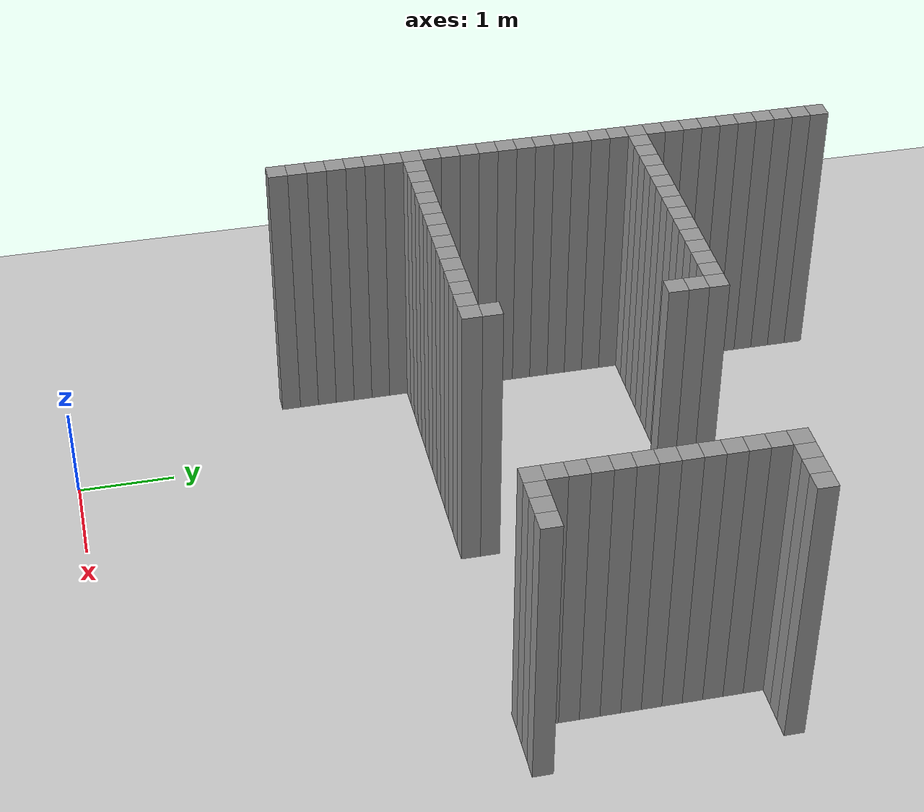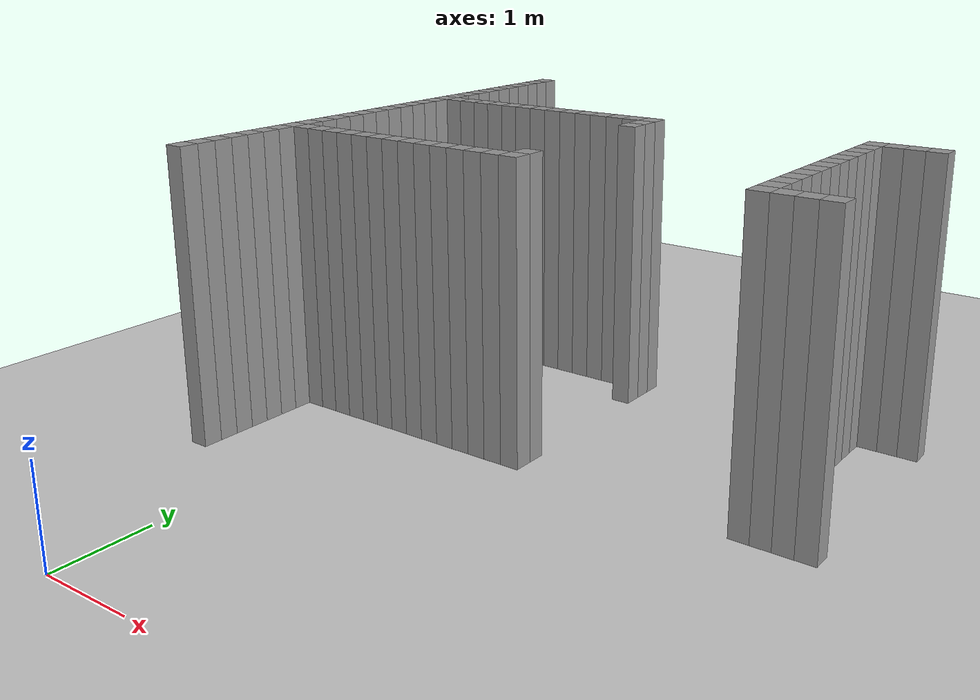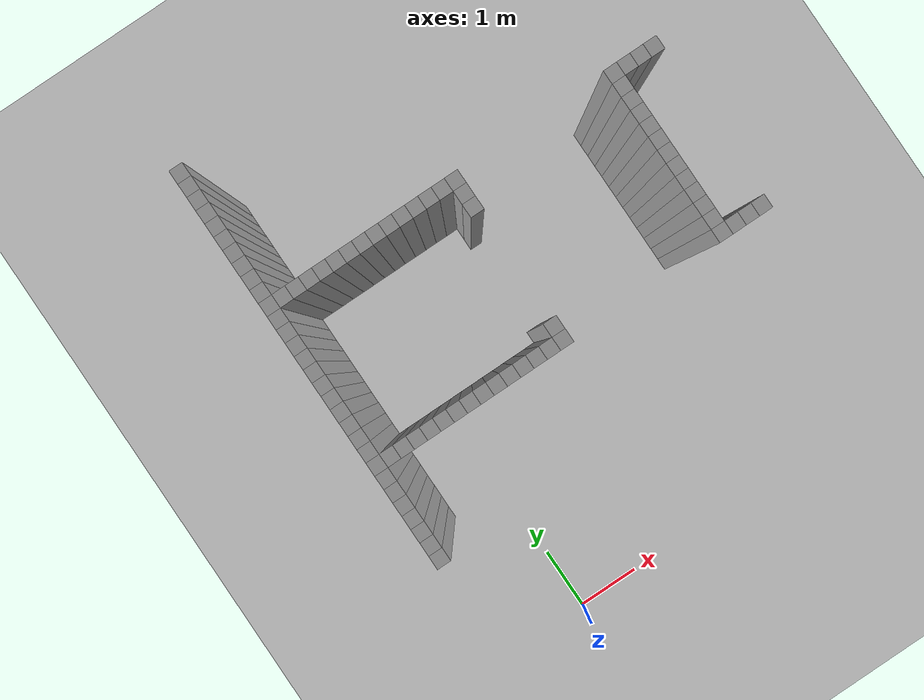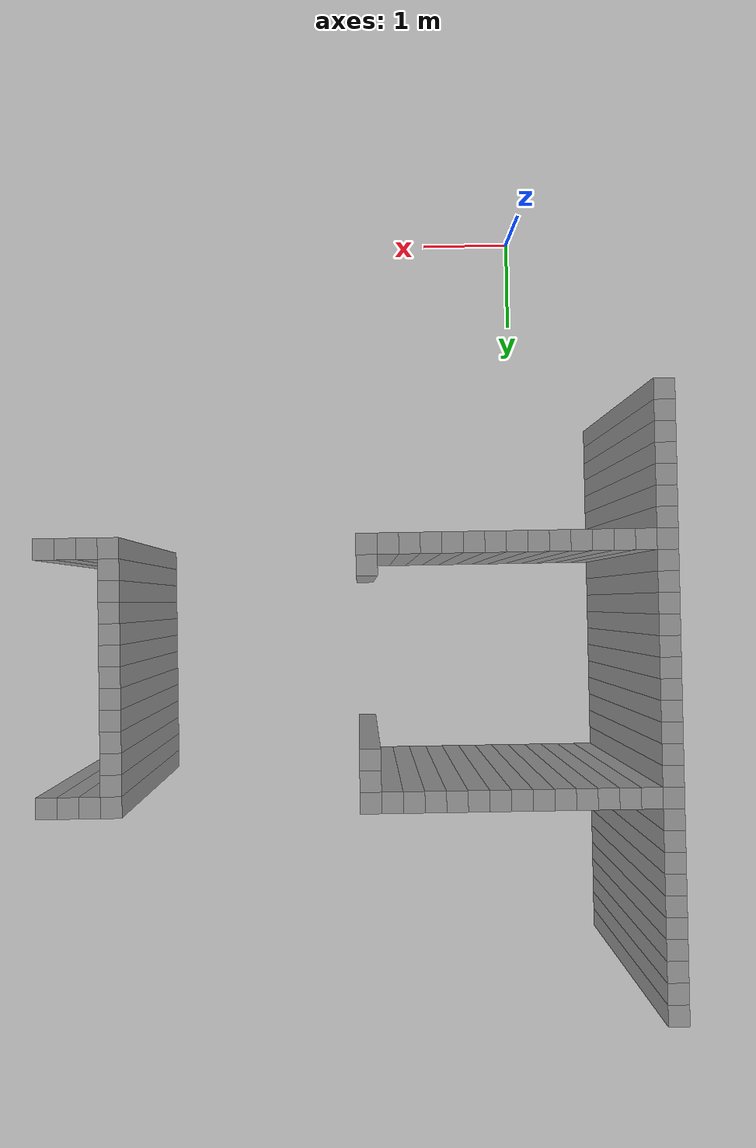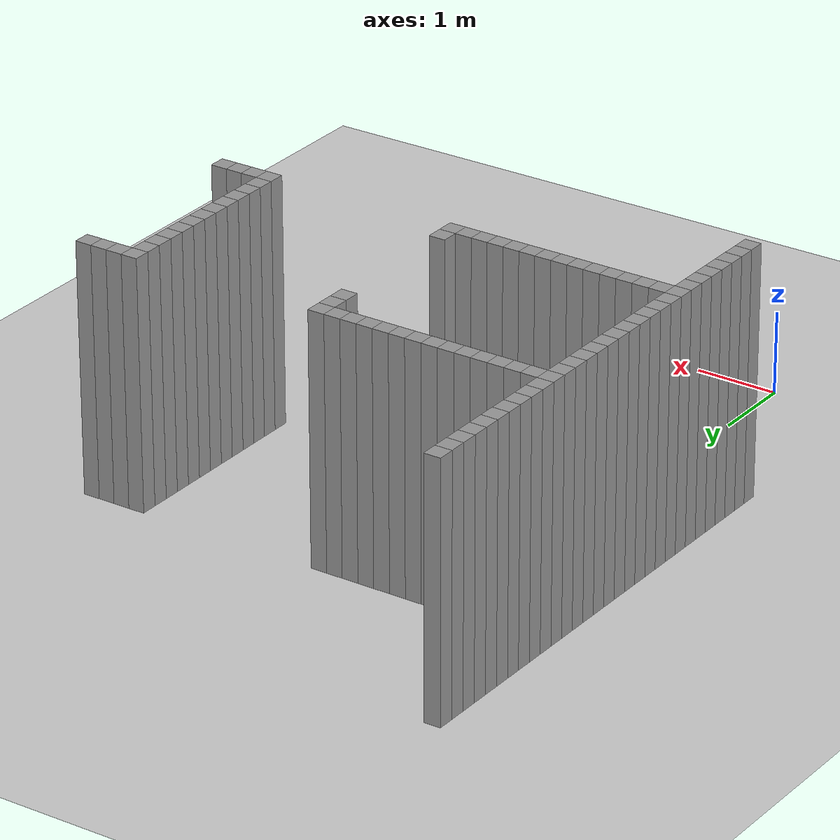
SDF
<sdf version="1.7">
 <world name="default">
  <model name="ground_plane">
   <static>1</static>
   <link name="link">
    <collision name="collision">
     <geometry><plane><normal>0 0 1</normal><size>100 100</size></plane></geometry>
     <surface>
      <contact><collide_bitmask>65535</collide_bitmask></contact>
      <friction><ode><mu>100</mu><mu2>50</mu2></ode></friction>
     </surface>
    </collision>
    <visual name="visual">
     <cast_shadows>0</cast_shadows>
     <geometry><plane><normal>0 0 1</normal><size>100 100</size></plane></geometry>
     <material>
      <script><uri>file://media/materials/scripts/gazebo.material</uri><name>Gazebo/Grey</name></script>
     </material>
    </visual>
   </link>
  </model>
  <model name="image49974">
   <pose>-1 -1 0 0 -0 0</pose>
   <link name="Wall_17">
    <collision name="Wall_17_Collision">
     <geometry><box><size>0.2 0.2 3</size></box></geometry>
     <pose>0 0 1.5 0 -0 0</pose>
    </collision>
    <visual name="Wall_17_Visual">
     <pose>0 0 1.5 0 -0 0</pose>
     <geometry><box><size>0.2 0.2 3</size></box></geometry>
     <material>
      <script><uri>file://media/materials/scripts/gazebo.material</uri><name>Gazebo/Grey</name></script>
      <ambient>1 1 1 1</ambient>
     </material>
     <meta><layer>0</layer></meta>
    </visual>
    <pose>0.0 3.4000000000000004 0 0 -0 0</pose>
   </link>
   <link name="Wall_18">
    <collision name="Wall_18_Collision">
     <geometry><box><size>0.2 0.2 3</size></box></geometry>
     <pose>0 0 1.5 0 -0 0</pose>
    </collision>
    <visual name="Wall_18_Visual">
     <pose>0 0 1.5 0 -0 0</pose>
     <geometry><box><size>0.2 0.2 3</size></box></geometry>
     <material>
      <script><uri>file://media/materials/scripts/gazebo.material</uri><name>Gazebo/Grey</name></script>
      <ambient>1 1 1 1</ambient>
     </material>
     <meta><layer>0</layer></meta>
    </visual>
    <pose>0.0 3.6 0 0 -0 0</pose>
   </link>
   <link name="Wall_19">
    <collision name="Wall_19_Collision">
     <geometry><box><size>0.2 0.2 3</size></box></geometry>
     <pose>0 0 1.5 0 -0 0</pose>
    </collision>
    <visual name="Wall_19_Visual">
     <pose>0 0 1.5 0 -0 0</pose>
     <geometry><box><size>0.2 0.2 3</size></box></geometry>
     <material>
      <script><uri>file://media/materials/scripts/gazebo.material</uri><name>Gazebo/Grey</name></script>
      <ambient>1 1 1 1</ambient>
     </material>
     <meta><layer>0</layer></meta>
    </visual>
    <pose>0.0 3.8000000000000003 0 0 -0 0</pose>
   </link>
   <link name="Wall_20">
    <collision name="Wall_20_Collision">
     <geometry><box><size>0.2 0.2 3</size></box></geometry>
     <pose>0 0 1.5 0 -0 0</pose>
    </collision>
    <visual name="Wall_20_Visual">
     <pose>0 0 1.5 0 -0 0</pose>
     <geometry><box><size>0.2 0.2 3</size></box></geometry>
     <material>
      <script><uri>file://media/materials/scripts/gazebo.material</uri><name>Gazebo/Grey</name></script>
      <ambient>1 1 1 1</ambient>
     </material>
     <meta><layer>0</layer></meta>
    </visual>
    <pose>0.0 4.0 0 0 -0 0</pose>
   </link>
   <link name="Wall_21">
    <collision name="Wall_21_Collision">
     <geometry><box><size>0.2 0.2 3</size></box></geometry>
     <pose>0 0 1.5 0 -0 0</pose>
    </collision>
    <visual name="Wall_21_Visual">
     <pose>0 0 1.5 0 -0 0</pose>
     <geometry><box><size>0.2 0.2 3</size></box></geometry>
     <material>
      <script><uri>file://media/materials/scripts/gazebo.material</uri><name>Gazebo/Grey</name></script>
      <ambient>1 1 1 1</ambient>
     </material>
     <meta><layer>0</layer></meta>
    </visual>
    <pose>0.0 4.2 0 0 -0 0</pose>
   </link>
   <link name="Wall_22">
    <collision name="Wall_22_Collision">
     <geometry><box><size>0.2 0.2 3</size></box></geometry>
     <pose>0 0 1.5 0 -0 0</pose>
    </collision>
    <visual name="Wall_22_Visual">
     <pose>0 0 1.5 0 -0 0</pose>
     <geometry><box><size>0.2 0.2 3</size></box></geometry>
     <material>
      <script><uri>file://media/materials/scripts/gazebo.material</uri><name>Gazebo/Grey</name></script>
      <ambient>1 1 1 1</ambient>
     </material>
     <meta><layer>0</layer></meta>
    </visual>
    <pose>0.0 4.4 0 0 -0 0</pose>
   </link>
   <link name="Wall_23">
    <collision name="Wall_23_Collision">
     <geometry><box><size>0.2 0.2 3</size></box></geometry>
     <pose>0 0 1.5 0 -0 0</pose>
    </collision>
    <visual name="Wall_23_Visual">
     <pose>0 0 1.5 0 -0 0</pose>
     <geometry><box><size>0.2 0.2 3</size></box></geometry>
     <material>
      <script><uri>file://media/materials/scripts/gazebo.material</uri><name>Gazebo/Grey</name></script>
      <ambient>1 1 1 1</ambient>
     </material>
     <meta><layer>0</layer></meta>
    </visual>
    <pose>0.0 4.6000000000000005 0 0 -0 0</pose>
   </link>
   <link name="Wall_24">
    <collision name="Wall_24_Collision">
     <geometry><box><size>0.2 0.2 3</size></box></geometry>
     <pose>0 0 1.5 0 -0 0</pose>
    </collision>
    <visual name="Wall_24_Visual">
     <pose>0 0 1.5 0 -0 0</pose>
     <geometry><box><size>0.2 0.2 3</size></box></geometry>
     <material>
      <script><uri>file://media/materials/scripts/gazebo.material</uri><name>Gazebo/Grey</name></script>
      <ambient>1 1 1 1</ambient>
     </material>
     <meta><layer>0</layer></meta>
    </visual>
    <pose>0.0 4.800000000000001 0 0 -0 0</pose>
   </link>
   <link name="Wall_25">
    <collision name="Wall_25_Collision">
     <geometry><box><size>0.2 0.2 3</size></box></geometry>
     <pose>0 0 1.5 0 -0 0</pose>
    </collision>
    <visual name="Wall_25_Visual">
     <pose>0 0 1.5 0 -0 0</pose>
     <geometry><box><size>0.2 0.2 3</size></box></geometry>
     <material>
      <script><uri>file://media/materials/scripts/gazebo.material</uri><name>Gazebo/Grey</name></script>
      <ambient>1 1 1 1</ambient>
     </material>
     <meta><layer>0</layer></meta>
    </visual>
    <pose>0.0 5.0 0 0 -0 0</pose>
   </link>
   <link name="Wall_26">
    <collision name="Wall_26_Collision">
     <geometry><box><size>0.2 0.2 3</size></box></geometry>
     <pose>0 0 1.5 0 -0 0</pose>
    </collision>
    <visual name="Wall_26_Visual">
     <pose>0 0 1.5 0 -0 0</pose>
     <geometry><box><size>0.2 0.2 3</size></box></geometry>
     <material>
      <script><uri>file://media/materials/scripts/gazebo.material</uri><name>Gazebo/Grey</name></script>
      <ambient>1 1 1 1</ambient>
     </material>
     <meta><layer>0</layer></meta>
    </visual>
    <pose>0.0 5.2 0 0 -0 0</pose>
   </link>
   <link name="Wall_27">
    <collision name="Wall_27_Collision">
     <geometry><box><size>0.2 0.2 3</size></box></geometry>
     <pose>0 0 1.5 0 -0 0</pose>
    </collision>
    <visual name="Wall_27_Visual">
     <pose>0 0 1.5 0 -0 0</pose>
     <geometry><box><size>0.2 0.2 3</size></box></geometry>
     <material>
      <script><uri>file://media/materials/scripts/gazebo.material</uri><name>Gazebo/Grey</name></script>
      <ambient>1 1 1 1</ambient>
     </material>
     <meta><layer>0</layer></meta>
    </visual>
    <pose>0.0 5.4 0 0 -0 0</pose>
   </link>
   <link name="Wall_28">
    <collision name="Wall_28_Collision">
     <geometry><box><size>0.2 0.2 3</size></box></geometry>
     <pose>0 0 1.5 0 -0 0</pose>
    </collision>
    <visual name="Wall_28_Visual">
     <pose>0 0 1.5 0 -0 0</pose>
     <geometry><box><size>0.2 0.2 3</size></box></geometry>
     <material>
      <script><uri>file://media/materials/scripts/gazebo.material</uri><name>Gazebo/Grey</name></script>
      <ambient>1 1 1 1</ambient>
     </material>
     <meta><layer>0</layer></meta>
    </visual>
    <pose>0.0 5.6000000000000005 0 0 -0 0</pose>
   </link>
   <link name="Wall_29">
    <collision name="Wall_29_Collision">
     <geometry><box><size>0.2 0.2 3</size></box></geometry>
     <pose>0 0 1.5 0 -0 0</pose>
    </collision>
    <visual name="Wall_29_Visual">
     <pose>0 0 1.5 0 -0 0</pose>
     <geometry><box><size>0.2 0.2 3</size></box></geometry>
     <material>
      <script><uri>file://media/materials/scripts/gazebo.material</uri><name>Gazebo/Grey</name></script>
      <ambient>1 1 1 1</ambient>
     </material>
     <meta><layer>0</layer></meta>
    </visual>
    <pose>0.0 5.800000000000001 0 0 -0 0</pose>
   </link>
   <link name="Wall_30">
    <collision name="Wall_30_Collision">
     <geometry><box><size>0.2 0.2 3</size></box></geometry>
     <pose>0 0 1.5 0 -0 0</pose>
    </collision>
    <visual name="Wall_30_Visual">
     <pose>0 0 1.5 0 -0 0</pose>
     <geometry><box><size>0.2 0.2 3</size></box></geometry>
     <material>
      <script><uri>file://media/materials/scripts/gazebo.material</uri><name>Gazebo/Grey</name></script>
      <ambient>1 1 1 1</ambient>
     </material>
     <meta><layer>0</layer></meta>
    </visual>
    <pose>0.0 6.0 0 0 -0 0</pose>
   </link>
   <link name="Wall_31">
    <collision name="Wall_31_Collision">
     <geometry><box><size>0.2 0.2 3</size></box></geometry>
     <pose>0 0 1.5 0 -0 0</pose>
    </collision>
    <visual name="Wall_31_Visual">
     <pose>0 0 1.5 0 -0 0</pose>
     <geometry><box><size>0.2 0.2 3</size></box></geometry>
     <material>
      <script><uri>file://media/materials/scripts/gazebo.material</uri><name>Gazebo/Grey</name></script>
      <ambient>1 1 1 1</ambient>
     </material>
     <meta><layer>0</layer></meta>
    </visual>
    <pose>0.0 6.2 0 0 -0 0</pose>
   </link>
   <link name="Wall_32">
    <collision name="Wall_32_Collision">
     <geometry><box><size>0.2 0.2 3</size></box></geometry>
     <pose>0 0 1.5 0 -0 0</pose>
    </collision>
    <visual name="Wall_32_Visual">
     <pose>0 0 1.5 0 -0 0</pose>
     <geometry><box><size>0.2 0.2 3</size></box></geometry>
     <material>
      <script><uri>file://media/materials/scripts/gazebo.material</uri><name>Gazebo/Grey</name></script>
      <ambient>1 1 1 1</ambient>
     </material>
     <meta><layer>0</layer></meta>
    </visual>
    <pose>0.0 6.4 0 0 -0 0</pose>
   </link>
   <link name="Wall_33">
    <collision name="Wall_33_Collision">
     <geometry><box><size>0.2 0.2 3</size></box></geometry>
     <pose>0 0 1.5 0 -0 0</pose>
    </collision>
    <visual name="Wall_33_Visual">
     <pose>0 0 1.5 0 -0 0</pose>
     <geometry><box><size>0.2 0.2 3</size></box></geometry>
     <material>
      <script><uri>file://media/materials/scripts/gazebo.material</uri><name>Gazebo/Grey</name></script>
      <ambient>1 1 1 1</ambient>
     </material>
     <meta><layer>0</layer></meta>
    </visual>
    <pose>0.0 6.6000000000000005 0 0 -0 0</pose>
   </link>
   <link name="Wall_34">
    <collision name="Wall_34_Collision">
     <geometry><box><size>0.2 0.2 3</size></box></geometry>
     <pose>0 0 1.5 0 -0 0</pose>
    </collision>
    <visual name="Wall_34_Visual">
     <pose>0 0 1.5 0 -0 0</pose>
     <geometry><box><size>0.2 0.2 3</size></box></geometry>
     <material>
      <script><uri>file://media/materials/scripts/gazebo.material</uri><name>Gazebo/Grey</name></script>
      <ambient>1 1 1 1</ambient>
     </material>
     <meta><layer>0</layer></meta>
    </visual>
    <pose>0.0 6.800000000000001 0 0 -0 0</pose>
   </link>
   <link name="Wall_35">
    <collision name="Wall_35_Collision">
     <geometry><box><size>0.2 0.2 3</size></box></geometry>
     <pose>0 0 1.5 0 -0 0</pose>
    </collision>
    <visual name="Wall_35_Visual">
     <pose>0 0 1.5 0 -0 0</pose>
     <geometry><box><size>0.2 0.2 3</size></box></geometry>
     <material>
      <script><uri>file://media/materials/scripts/gazebo.material</uri><name>Gazebo/Grey</name></script>
      <ambient>1 1 1 1</ambient>
     </material>
     <meta><layer>0</layer></meta>
    </visual>
    <pose>0.0 7.0 0 0 -0 0</pose>
   </link>
   <link name="Wall_36">
    <collision name="Wall_36_Collision">
     <geometry><box><size>0.2 0.2 3</size></box></geometry>
     <pose>0 0 1.5 0 -0 0</pose>
    </collision>
    <visual name="Wall_36_Visual">
     <pose>0 0 1.5 0 -0 0</pose>
     <geometry><box><size>0.2 0.2 3</size></box></geometry>
     <material>
      <script><uri>file://media/materials/scripts/gazebo.material</uri><name>Gazebo/Grey</name></script>
      <ambient>1 1 1 1</ambient>
     </material>
     <meta><layer>0</layer></meta>
    </visual>
    <pose>0.0 7.2 0 0 -0 0</pose>
   </link>
   <link name="Wall_37">
    <collision name="Wall_37_Collision">
     <geometry><box><size>0.2 0.2 3</size></box></geometry>
     <pose>0 0 1.5 0 -0 0</pose>
    </collision>
    <visual name="Wall_37_Visual">
     <pose>0 0 1.5 0 -0 0</pose>
     <geometry><box><size>0.2 0.2 3</size></box></geometry>
     <material>
      <script><uri>file://media/materials/scripts/gazebo.material</uri><name>Gazebo/Grey</name></script>
      <ambient>1 1 1 1</ambient>
     </material>
     <meta><layer>0</layer></meta>
    </visual>
    <pose>0.0 7.4 0 0 -0 0</pose>
   </link>
   <link name="Wall_38">
    <collision name="Wall_38_Collision">
     <geometry><box><size>0.2 0.2 3</size></box></geometry>
     <pose>0 0 1.5 0 -0 0</pose>
    </collision>
    <visual name="Wall_38_Visual">
     <pose>0 0 1.5 0 -0 0</pose>
     <geometry><box><size>0.2 0.2 3</size></box></geometry>
     <material>
      <script><uri>file://media/materials/scripts/gazebo.material</uri><name>Gazebo/Grey</name></script>
      <ambient>1 1 1 1</ambient>
     </material>
     <meta><layer>0</layer></meta>
    </visual>
    <pose>0.0 7.6000000000000005 0 0 -0 0</pose>
   </link>
   <link name="Wall_39">
    <collision name="Wall_39_Collision">
     <geometry><box><size>0.2 0.2 3</size></box></geometry>
     <pose>0 0 1.5 0 -0 0</pose>
    </collision>
    <visual name="Wall_39_Visual">
     <pose>0 0 1.5 0 -0 0</pose>
     <geometry><box><size>0.2 0.2 3</size></box></geometry>
     <material>
      <script><uri>file://media/materials/scripts/gazebo.material</uri><name>Gazebo/Grey</name></script>
      <ambient>1 1 1 1</ambient>
     </material>
     <meta><layer>0</layer></meta>
    </visual>
    <pose>0.0 7.800000000000001 0 0 -0 0</pose>
   </link>
   <link name="Wall_40">
    <collision name="Wall_40_Collision">
     <geometry><box><size>0.2 0.2 3</size></box></geometry>
     <pose>0 0 1.5 0 -0 0</pose>
    </collision>
    <visual name="Wall_40_Visual">
     <pose>0 0 1.5 0 -0 0</pose>
     <geometry><box><size>0.2 0.2 3</size></box></geometry>
     <material>
      <script><uri>file://media/materials/scripts/gazebo.material</uri><name>Gazebo/Grey</name></script>
      <ambient>1 1 1 1</ambient>
     </material>
     <meta><layer>0</layer></meta>
    </visual>
    <pose>0.0 8.0 0 0 -0 0</pose>
   </link>
   <link name="Wall_41">
    <collision name="Wall_41_Collision">
     <geometry><box><size>0.2 0.2 3</size></box></geometry>
     <pose>0 0 1.5 0 -0 0</pose>
    </collision>
    <visual name="Wall_41_Visual">
     <pose>0 0 1.5 0 -0 0</pose>
     <geometry><box><size>0.2 0.2 3</size></box></geometry>
     <material>
      <script><uri>file://media/materials/scripts/gazebo.material</uri><name>Gazebo/Grey</name></script>
      <ambient>1 1 1 1</ambient>
     </material>
     <meta><layer>0</layer></meta>
    </visual>
    <pose>0.0 8.200000000000001 0 0 -0 0</pose>
   </link>
   <link name="Wall_42">
    <collision name="Wall_42_Collision">
     <geometry><box><size>0.2 0.2 3</size></box></geometry>
     <pose>0 0 1.5 0 -0 0</pose>
    </collision>
    <visual name="Wall_42_Visual">
     <pose>0 0 1.5 0 -0 0</pose>
     <geometry><box><size>0.2 0.2 3</size></box></geometry>
     <material>
      <script><uri>file://media/materials/scripts/gazebo.material</uri><name>Gazebo/Grey</name></script>
      <ambient>1 1 1 1</ambient>
     </material>
     <meta><layer>0</layer></meta>
    </visual>
    <pose>0.0 8.4 0 0 -0 0</pose>
   </link>
   <link name="Wall_43">
    <collision name="Wall_43_Collision">
     <geometry><box><size>0.2 0.2 3</size></box></geometry>
     <pose>0 0 1.5 0 -0 0</pose>
    </collision>
    <visual name="Wall_43_Visual">
     <pose>0 0 1.5 0 -0 0</pose>
     <geometry><box><size>0.2 0.2 3</size></box></geometry>
     <material>
      <script><uri>file://media/materials/scripts/gazebo.material</uri><name>Gazebo/Grey</name></script>
      <ambient>1 1 1 1</ambient>
     </material>
     <meta><layer>0</layer></meta>
    </visual>
    <pose>0.0 8.6 0 0 -0 0</pose>
   </link>
   <link name="Wall_44">
    <collision name="Wall_44_Collision">
     <geometry><box><size>0.2 0.2 3</size></box></geometry>
     <pose>0 0 1.5 0 -0 0</pose>
    </collision>
    <visual name="Wall_44_Visual">
     <pose>0 0 1.5 0 -0 0</pose>
     <geometry><box><size>0.2 0.2 3</size></box></geometry>
     <material>
      <script><uri>file://media/materials/scripts/gazebo.material</uri><name>Gazebo/Grey</name></script>
      <ambient>1 1 1 1</ambient>
     </material>
     <meta><layer>0</layer></meta>
    </visual>
    <pose>0.0 8.8 0 0 -0 0</pose>
   </link>
   <link name="Wall_45">
    <collision name="Wall_45_Collision">
     <geometry><box><size>0.2 0.2 3</size></box></geometry>
     <pose>0 0 1.5 0 -0 0</pose>
    </collision>
    <visual name="Wall_45_Visual">
     <pose>0 0 1.5 0 -0 0</pose>
     <geometry><box><size>0.2 0.2 3</size></box></geometry>
     <material>
      <script><uri>file://media/materials/scripts/gazebo.material</uri><name>Gazebo/Grey</name></script>
      <ambient>1 1 1 1</ambient>
     </material>
     <meta><layer>0</layer></meta>
    </visual>
    <pose>0.0 9.0 0 0 -0 0</pose>
   </link>
   <link name="Wall_46">
    <collision name="Wall_46_Collision">
     <geometry><box><size>0.2 0.2 3</size></box></geometry>
     <pose>0 0 1.5 0 -0 0</pose>
    </collision>
    <visual name="Wall_46_Visual">
     <pose>0 0 1.5 0 -0 0</pose>
     <geometry><box><size>0.2 0.2 3</size></box></geometry>
     <material>
      <script><uri>file://media/materials/scripts/gazebo.material</uri><name>Gazebo/Grey</name></script>
      <ambient>1 1 1 1</ambient>
     </material>
     <meta><layer>0</layer></meta>
    </visual>
    <pose>0.0 9.200000000000001 0 0 -0 0</pose>
   </link>
   <link name="Wall_62">
    <collision name="Wall_62_Collision">
     <geometry><box><size>0.2 0.2 3</size></box></geometry>
     <pose>0 0 1.5 0 -0 0</pose>
    </collision>
    <visual name="Wall_62_Visual">
     <pose>0 0 1.5 0 -0 0</pose>
     <geometry><box><size>0.2 0.2 3</size></box></geometry>
     <material>
      <script><uri>file://media/materials/scripts/gazebo.material</uri><name>Gazebo/Grey</name></script>
      <ambient>1 1 1 1</ambient>
     </material>
     <meta><layer>0</layer></meta>
    </visual>
    <pose>0.2 4.800000000000001 0 0 -0 0</pose>
   </link>
   <link name="Wall_63">
    <collision name="Wall_63_Collision">
     <geometry><box><size>0.2 0.2 3</size></box></geometry>
     <pose>0 0 1.5 0 -0 0</pose>
    </collision>
    <visual name="Wall_63_Visual">
     <pose>0 0 1.5 0 -0 0</pose>
     <geometry><box><size>0.2 0.2 3</size></box></geometry>
     <material>
      <script><uri>file://media/materials/scripts/gazebo.material</uri><name>Gazebo/Grey</name></script>
      <ambient>1 1 1 1</ambient>
     </material>
     <meta><layer>0</layer></meta>
    </visual>
    <pose>0.2 7.2 0 0 -0 0</pose>
   </link>
   <link name="Wall_68">
    <collision name="Wall_68_Collision">
     <geometry><box><size>0.2 0.2 3</size></box></geometry>
     <pose>0 0 1.5 0 -0 0</pose>
    </collision>
    <visual name="Wall_68_Visual">
     <pose>0 0 1.5 0 -0 0</pose>
     <geometry><box><size>0.2 0.2 3</size></box></geometry>
     <material>
      <script><uri>file://media/materials/scripts/gazebo.material</uri><name>Gazebo/Grey</name></script>
      <ambient>1 1 1 1</ambient>
     </material>
     <meta><layer>0</layer></meta>
    </visual>
    <pose>0.4 4.800000000000001 0 0 -0 0</pose>
   </link>
   <link name="Wall_69">
    <collision name="Wall_69_Collision">
     <geometry><box><size>0.2 0.2 3</size></box></geometry>
     <pose>0 0 1.5 0 -0 0</pose>
    </collision>
    <visual name="Wall_69_Visual">
     <pose>0 0 1.5 0 -0 0</pose>
     <geometry><box><size>0.2 0.2 3</size></box></geometry>
     <material>
      <script><uri>file://media/materials/scripts/gazebo.material</uri><name>Gazebo/Grey</name></script>
      <ambient>1 1 1 1</ambient>
     </material>
     <meta><layer>0</layer></meta>
    </visual>
    <pose>0.4 7.2 0 0 -0 0</pose>
   </link>
   <link name="Wall_74">
    <collision name="Wall_74_Collision">
     <geometry><box><size>0.2 0.2 3</size></box></geometry>
     <pose>0 0 1.5 0 -0 0</pose>
    </collision>
    <visual name="Wall_74_Visual">
     <pose>0 0 1.5 0 -0 0</pose>
     <geometry><box><size>0.2 0.2 3</size></box></geometry>
     <material>
      <script><uri>file://media/materials/scripts/gazebo.material</uri><name>Gazebo/Grey</name></script>
      <ambient>1 1 1 1</ambient>
     </material>
     <meta><layer>0</layer></meta>
    </visual>
    <pose>0.6000000000000001 4.800000000000001 0 0 -0 0</pose>
   </link>
   <link name="Wall_75">
    <collision name="Wall_75_Collision">
     <geometry><box><size>0.2 0.2 3</size></box></geometry>
     <pose>0 0 1.5 0 -0 0</pose>
    </collision>
    <visual name="Wall_75_Visual">
     <pose>0 0 1.5 0 -0 0</pose>
     <geometry><box><size>0.2 0.2 3</size></box></geometry>
     <material>
      <script><uri>file://media/materials/scripts/gazebo.material</uri><name>Gazebo/Grey</name></script>
      <ambient>1 1 1 1</ambient>
     </material>
     <meta><layer>0</layer></meta>
    </visual>
    <pose>0.6000000000000001 7.2 0 0 -0 0</pose>
   </link>
   <link name="Wall_80">
    <collision name="Wall_80_Collision">
     <geometry><box><size>0.2 0.2 3</size></box></geometry>
     <pose>0 0 1.5 0 -0 0</pose>
    </collision>
    <visual name="Wall_80_Visual">
     <pose>0 0 1.5 0 -0 0</pose>
     <geometry><box><size>0.2 0.2 3</size></box></geometry>
     <material>
      <script><uri>file://media/materials/scripts/gazebo.material</uri><name>Gazebo/Grey</name></script>
      <ambient>1 1 1 1</ambient>
     </material>
     <meta><layer>0</layer></meta>
    </visual>
    <pose>0.8 4.800000000000001 0 0 -0 0</pose>
   </link>
   <link name="Wall_81">
    <collision name="Wall_81_Collision">
     <geometry><box><size>0.2 0.2 3</size></box></geometry>
     <pose>0 0 1.5 0 -0 0</pose>
    </collision>
    <visual name="Wall_81_Visual">
     <pose>0 0 1.5 0 -0 0</pose>
     <geometry><box><size>0.2 0.2 3</size></box></geometry>
     <material>
      <script><uri>file://media/materials/scripts/gazebo.material</uri><name>Gazebo/Grey</name></script>
      <ambient>1 1 1 1</ambient>
     </material>
     <meta><layer>0</layer></meta>
    </visual>
    <pose>0.8 7.2 0 0 -0 0</pose>
   </link>
   <link name="Wall_86">
    <collision name="Wall_86_Collision">
     <geometry><box><size>0.2 0.2 3</size></box></geometry>
     <pose>0 0 1.5 0 -0 0</pose>
    </collision>
    <visual name="Wall_86_Visual">
     <pose>0 0 1.5 0 -0 0</pose>
     <geometry><box><size>0.2 0.2 3</size></box></geometry>
     <material>
      <script><uri>file://media/materials/scripts/gazebo.material</uri><name>Gazebo/Grey</name></script>
      <ambient>1 1 1 1</ambient>
     </material>
     <meta><layer>0</layer></meta>
    </visual>
    <pose>1.0 4.800000000000001 0 0 -0 0</pose>
   </link>
   <link name="Wall_87">
    <collision name="Wall_87_Collision">
     <geometry><box><size>0.2 0.2 3</size></box></geometry>
     <pose>0 0 1.5 0 -0 0</pose>
    </collision>
    <visual name="Wall_87_Visual">
     <pose>0 0 1.5 0 -0 0</pose>
     <geometry><box><size>0.2 0.2 3</size></box></geometry>
     <material>
      <script><uri>file://media/materials/scripts/gazebo.material</uri><name>Gazebo/Grey</name></script>
      <ambient>1 1 1 1</ambient>
     </material>
     <meta><layer>0</layer></meta>
    </visual>
    <pose>1.0 7.2 0 0 -0 0</pose>
   </link>
   <link name="Wall_91">
    <collision name="Wall_91_Collision">
     <geometry><box><size>0.2 0.2 3</size></box></geometry>
     <pose>0 0 1.5 0 -0 0</pose>
    </collision>
    <visual name="Wall_91_Visual">
     <pose>0 0 1.5 0 -0 0</pose>
     <geometry><box><size>0.2 0.2 3</size></box></geometry>
     <material>
      <script><uri>file://media/materials/scripts/gazebo.material</uri><name>Gazebo/Grey</name></script>
      <ambient>1 1 1 1</ambient>
     </material>
     <meta><layer>0</layer></meta>
    </visual>
    <pose>1.2000000000000002 4.800000000000001 0 0 -0 0</pose>
   </link>
   <link name="Wall_92">
    <collision name="Wall_92_Collision">
     <geometry><box><size>0.2 0.2 3</size></box></geometry>
     <pose>0 0 1.5 0 -0 0</pose>
    </collision>
    <visual name="Wall_92_Visual">
     <pose>0 0 1.5 0 -0 0</pose>
     <geometry><box><size>0.2 0.2 3</size></box></geometry>
     <material>
      <script><uri>file://media/materials/scripts/gazebo.material</uri><name>Gazebo/Grey</name></script>
      <ambient>1 1 1 1</ambient>
     </material>
     <meta><layer>0</layer></meta>
    </visual>
    <pose>1.2000000000000002 7.2 0 0 -0 0</pose>
   </link>
   <link name="Wall_96">
    <collision name="Wall_96_Collision">
     <geometry><box><size>0.2 0.2 3</size></box></geometry>
     <pose>0 0 1.5 0 -0 0</pose>
    </collision>
    <visual name="Wall_96_Visual">
     <pose>0 0 1.5 0 -0 0</pose>
     <geometry><box><size>0.2 0.2 3</size></box></geometry>
     <material>
      <script><uri>file://media/materials/scripts/gazebo.material</uri><name>Gazebo/Grey</name></script>
      <ambient>1 1 1 1</ambient>
     </material>
     <meta><layer>0</layer></meta>
    </visual>
    <pose>1.4000000000000001 4.800000000000001 0 0 -0 0</pose>
   </link>
   <link name="Wall_97">
    <collision name="Wall_97_Collision">
     <geometry><box><size>0.2 0.2 3</size></box></geometry>
     <pose>0 0 1.5 0 -0 0</pose>
    </collision>
    <visual name="Wall_97_Visual">
     <pose>0 0 1.5 0 -0 0</pose>
     <geometry><box><size>0.2 0.2 3</size></box></geometry>
     <material>
      <script><uri>file://media/materials/scripts/gazebo.material</uri><name>Gazebo/Grey</name></script>
      <ambient>1 1 1 1</ambient>
     </material>
     <meta><layer>0</layer></meta>
    </visual>
    <pose>1.4000000000000001 7.2 0 0 -0 0</pose>
   </link>
   <link name="Wall_100">
    <collision name="Wall_100_Collision">
     <geometry><box><size>0.2 0.2 3</size></box></geometry>
     <pose>0 0 1.5 0 -0 0</pose>
    </collision>
    <visual name="Wall_100_Visual">
     <pose>0 0 1.5 0 -0 0</pose>
     <geometry><box><size>0.2 0.2 3</size></box></geometry>
     <material>
      <script><uri>file://media/materials/scripts/gazebo.material</uri><name>Gazebo/Grey</name></script>
      <ambient>1 1 1 1</ambient>
     </material>
     <meta><layer>0</layer></meta>
    </visual>
    <pose>1.6 4.800000000000001 0 0 -0 0</pose>
   </link>
   <link name="Wall_101">
    <collision name="Wall_101_Collision">
     <geometry><box><size>0.2 0.2 3</size></box></geometry>
     <pose>0 0 1.5 0 -0 0</pose>
    </collision>
    <visual name="Wall_101_Visual">
     <pose>0 0 1.5 0 -0 0</pose>
     <geometry><box><size>0.2 0.2 3</size></box></geometry>
     <material>
      <script><uri>file://media/materials/scripts/gazebo.material</uri><name>Gazebo/Grey</name></script>
      <ambient>1 1 1 1</ambient>
     </material>
     <meta><layer>0</layer></meta>
    </visual>
    <pose>1.6 7.2 0 0 -0 0</pose>
   </link>
   <link name="Wall_104">
    <collision name="Wall_104_Collision">
     <geometry><box><size>0.2 0.2 3</size></box></geometry>
     <pose>0 0 1.5 0 -0 0</pose>
    </collision>
    <visual name="Wall_104_Visual">
     <pose>0 0 1.5 0 -0 0</pose>
     <geometry><box><size>0.2 0.2 3</size></box></geometry>
     <material>
      <script><uri>file://media/materials/scripts/gazebo.material</uri><name>Gazebo/Grey</name></script>
      <ambient>1 1 1 1</ambient>
     </material>
     <meta><layer>0</layer></meta>
    </visual>
    <pose>1.8 4.800000000000001 0 0 -0 0</pose>
   </link>
   <link name="Wall_105">
    <collision name="Wall_105_Collision">
     <geometry><box><size>0.2 0.2 3</size></box></geometry>
     <pose>0 0 1.5 0 -0 0</pose>
    </collision>
    <visual name="Wall_105_Visual">
     <pose>0 0 1.5 0 -0 0</pose>
     <geometry><box><size>0.2 0.2 3</size></box></geometry>
     <material>
      <script><uri>file://media/materials/scripts/gazebo.material</uri><name>Gazebo/Grey</name></script>
      <ambient>1 1 1 1</ambient>
     </material>
     <meta><layer>0</layer></meta>
    </visual>
    <pose>1.8 7.2 0 0 -0 0</pose>
   </link>
   <link name="Wall_108">
    <collision name="Wall_108_Collision">
     <geometry><box><size>0.2 0.2 3</size></box></geometry>
     <pose>0 0 1.5 0 -0 0</pose>
    </collision>
    <visual name="Wall_108_Visual">
     <pose>0 0 1.5 0 -0 0</pose>
     <geometry><box><size>0.2 0.2 3</size></box></geometry>
     <material>
      <script><uri>file://media/materials/scripts/gazebo.material</uri><name>Gazebo/Grey</name></script>
      <ambient>1 1 1 1</ambient>
     </material>
     <meta><layer>0</layer></meta>
    </visual>
    <pose>2.0 4.800000000000001 0 0 -0 0</pose>
   </link>
   <link name="Wall_109">
    <collision name="Wall_109_Collision">
     <geometry><box><size>0.2 0.2 3</size></box></geometry>
     <pose>0 0 1.5 0 -0 0</pose>
    </collision>
    <visual name="Wall_109_Visual">
     <pose>0 0 1.5 0 -0 0</pose>
     <geometry><box><size>0.2 0.2 3</size></box></geometry>
     <material>
      <script><uri>file://media/materials/scripts/gazebo.material</uri><name>Gazebo/Grey</name></script>
      <ambient>1 1 1 1</ambient>
     </material>
     <meta><layer>0</layer></meta>
    </visual>
    <pose>2.0 7.2 0 0 -0 0</pose>
   </link>
   <link name="Wall_112">
    <collision name="Wall_112_Collision">
     <geometry><box><size>0.2 0.2 3</size></box></geometry>
     <pose>0 0 1.5 0 -0 0</pose>
    </collision>
    <visual name="Wall_112_Visual">
     <pose>0 0 1.5 0 -0 0</pose>
     <geometry><box><size>0.2 0.2 3</size></box></geometry>
     <material>
      <script><uri>file://media/materials/scripts/gazebo.material</uri><name>Gazebo/Grey</name></script>
      <ambient>1 1 1 1</ambient>
     </material>
     <meta><layer>0</layer></meta>
    </visual>
    <pose>2.2 4.800000000000001 0 0 -0 0</pose>
   </link>
   <link name="Wall_113">
    <collision name="Wall_113_Collision">
     <geometry><box><size>0.2 0.2 3</size></box></geometry>
     <pose>0 0 1.5 0 -0 0</pose>
    </collision>
    <visual name="Wall_113_Visual">
     <pose>0 0 1.5 0 -0 0</pose>
     <geometry><box><size>0.2 0.2 3</size></box></geometry>
     <material>
      <script><uri>file://media/materials/scripts/gazebo.material</uri><name>Gazebo/Grey</name></script>
      <ambient>1 1 1 1</ambient>
     </material>
     <meta><layer>0</layer></meta>
    </visual>
    <pose>2.2 7.2 0 0 -0 0</pose>
   </link>
   <link name="Wall_116">
    <collision name="Wall_116_Collision">
     <geometry><box><size>0.2 0.2 3</size></box></geometry>
     <pose>0 0 1.5 0 -0 0</pose>
    </collision>
    <visual name="Wall_116_Visual">
     <pose>0 0 1.5 0 -0 0</pose>
     <geometry><box><size>0.2 0.2 3</size></box></geometry>
     <material>
      <script><uri>file://media/materials/scripts/gazebo.material</uri><name>Gazebo/Grey</name></script>
      <ambient>1 1 1 1</ambient>
     </material>
     <meta><layer>0</layer></meta>
    </visual>
    <pose>2.4000000000000004 4.800000000000001 0 0 -0 0</pose>
   </link>
   <link name="Wall_117">
    <collision name="Wall_117_Collision">
     <geometry><box><size>0.2 0.2 3</size></box></geometry>
     <pose>0 0 1.5 0 -0 0</pose>
    </collision>
    <visual name="Wall_117_Visual">
     <pose>0 0 1.5 0 -0 0</pose>
     <geometry><box><size>0.2 0.2 3</size></box></geometry>
     <material>
      <script><uri>file://media/materials/scripts/gazebo.material</uri><name>Gazebo/Grey</name></script>
      <ambient>1 1 1 1</ambient>
     </material>
     <meta><layer>0</layer></meta>
    </visual>
    <pose>2.4000000000000004 7.2 0 0 -0 0</pose>
   </link>
   <link name="Wall_132">
    <collision name="Wall_132_Collision">
     <geometry><box><size>0.2 0.2 3</size></box></geometry>
     <pose>0 0 1.5 0 -0 0</pose>
    </collision>
    <visual name="Wall_132_Visual">
     <pose>0 0 1.5 0 -0 0</pose>
     <geometry><box><size>0.2 0.2 3</size></box></geometry>
     <material>
      <script><uri>file://media/materials/scripts/gazebo.material</uri><name>Gazebo/Grey</name></script>
      <ambient>1 1 1 1</ambient>
     </material>
     <meta><layer>0</layer></meta>
    </visual>
    <pose>2.6 4.800000000000001 0 0 -0 0</pose>
   </link>
   <link name="Wall_133">
    <collision name="Wall_133_Collision">
     <geometry><box><size>0.2 0.2 3</size></box></geometry>
     <pose>0 0 1.5 0 -0 0</pose>
    </collision>
    <visual name="Wall_133_Visual">
     <pose>0 0 1.5 0 -0 0</pose>
     <geometry><box><size>0.2 0.2 3</size></box></geometry>
     <material>
      <script><uri>file://media/materials/scripts/gazebo.material</uri><name>Gazebo/Grey</name></script>
      <ambient>1 1 1 1</ambient>
     </material>
     <meta><layer>0</layer></meta>
    </visual>
    <pose>2.6 7.2 0 0 -0 0</pose>
   </link>
   <link name="Wall_138">
    <collision name="Wall_138_Collision">
     <geometry><box><size>0.2 0.2 3</size></box></geometry>
     <pose>0 0 1.5 0 -0 0</pose>
    </collision>
    <visual name="Wall_138_Visual">
     <pose>0 0 1.5 0 -0 0</pose>
     <geometry><box><size>0.2 0.2 3</size></box></geometry>
     <material>
      <script><uri>file://media/materials/scripts/gazebo.material</uri><name>Gazebo/Grey</name></script>
      <ambient>1 1 1 1</ambient>
     </material>
     <meta><layer>0</layer></meta>
    </visual>
    <pose>2.8000000000000003 4.800000000000001 0 0 -0 0</pose>
   </link>
   <link name="Wall_139">
    <collision name="Wall_139_Collision">
     <geometry><box><size>0.2 0.2 3</size></box></geometry>
     <pose>0 0 1.5 0 -0 0</pose>
    </collision>
    <visual name="Wall_139_Visual">
     <pose>0 0 1.5 0 -0 0</pose>
     <geometry><box><size>0.2 0.2 3</size></box></geometry>
     <material>
      <script><uri>file://media/materials/scripts/gazebo.material</uri><name>Gazebo/Grey</name></script>
      <ambient>1 1 1 1</ambient>
     </material>
     <meta><layer>0</layer></meta>
    </visual>
    <pose>2.8000000000000003 5.0 0 0 -0 0</pose>
   </link>
   <link name="Wall_140">
    <collision name="Wall_140_Collision">
     <geometry><box><size>0.2 0.2 3</size></box></geometry>
     <pose>0 0 1.5 0 -0 0</pose>
    </collision>
    <visual name="Wall_140_Visual">
     <pose>0 0 1.5 0 -0 0</pose>
     <geometry><box><size>0.2 0.2 3</size></box></geometry>
     <material>
      <script><uri>file://media/materials/scripts/gazebo.material</uri><name>Gazebo/Grey</name></script>
      <ambient>1 1 1 1</ambient>
     </material>
     <meta><layer>0</layer></meta>
    </visual>
    <pose>2.8000000000000003 6.800000000000001 0 0 -0 0</pose>
   </link>
   <link name="Wall_141">
    <collision name="Wall_141_Collision">
     <geometry><box><size>0.2 0.2 3</size></box></geometry>
     <pose>0 0 1.5 0 -0 0</pose>
    </collision>
    <visual name="Wall_141_Visual">
     <pose>0 0 1.5 0 -0 0</pose>
     <geometry><box><size>0.2 0.2 3</size></box></geometry>
     <material>
      <script><uri>file://media/materials/scripts/gazebo.material</uri><name>Gazebo/Grey</name></script>
      <ambient>1 1 1 1</ambient>
     </material>
     <meta><layer>0</layer></meta>
    </visual>
    <pose>2.8000000000000003 7.0 0 0 -0 0</pose>
   </link>
   <link name="Wall_142">
    <collision name="Wall_142_Collision">
     <geometry><box><size>0.2 0.2 3</size></box></geometry>
     <pose>0 0 1.5 0 -0 0</pose>
    </collision>
    <visual name="Wall_142_Visual">
     <pose>0 0 1.5 0 -0 0</pose>
     <geometry><box><size>0.2 0.2 3</size></box></geometry>
     <material>
      <script><uri>file://media/materials/scripts/gazebo.material</uri><name>Gazebo/Grey</name></script>
      <ambient>1 1 1 1</ambient>
     </material>
     <meta><layer>0</layer></meta>
    </visual>
    <pose>2.8000000000000003 7.2 0 0 -0 0</pose>
   </link>
   <link name="Wall_202">
    <collision name="Wall_202_Collision">
     <geometry><box><size>0.2 0.2 3</size></box></geometry>
     <pose>0 0 1.5 0 -0 0</pose>
    </collision>
    <visual name="Wall_202_Visual">
     <pose>0 0 1.5 0 -0 0</pose>
     <geometry><box><size>0.2 0.2 3</size></box></geometry>
     <material>
      <script><uri>file://media/materials/scripts/gazebo.material</uri><name>Gazebo/Grey</name></script>
      <ambient>1 1 1 1</ambient>
     </material>
     <meta><layer>0</layer></meta>
    </visual>
    <pose>5.2 4.800000000000001 0 0 -0 0</pose>
   </link>
   <link name="Wall_203">
    <collision name="Wall_203_Collision">
     <geometry><box><size>0.2 0.2 3</size></box></geometry>
     <pose>0 0 1.5 0 -0 0</pose>
    </collision>
    <visual name="Wall_203_Visual">
     <pose>0 0 1.5 0 -0 0</pose>
     <geometry><box><size>0.2 0.2 3</size></box></geometry>
     <material>
      <script><uri>file://media/materials/scripts/gazebo.material</uri><name>Gazebo/Grey</name></script>
      <ambient>1 1 1 1</ambient>
     </material>
     <meta><layer>0</layer></meta>
    </visual>
    <pose>5.2 5.0 0 0 -0 0</pose>
   </link>
   <link name="Wall_204">
    <collision name="Wall_204_Collision">
     <geometry><box><size>0.2 0.2 3</size></box></geometry>
     <pose>0 0 1.5 0 -0 0</pose>
    </collision>
    <visual name="Wall_204_Visual">
     <pose>0 0 1.5 0 -0 0</pose>
     <geometry><box><size>0.2 0.2 3</size></box></geometry>
     <material>
      <script><uri>file://media/materials/scripts/gazebo.material</uri><name>Gazebo/Grey</name></script>
      <ambient>1 1 1 1</ambient>
     </material>
     <meta><layer>0</layer></meta>
    </visual>
    <pose>5.2 5.2 0 0 -0 0</pose>
   </link>
   <link name="Wall_205">
    <collision name="Wall_205_Collision">
     <geometry><box><size>0.2 0.2 3</size></box></geometry>
     <pose>0 0 1.5 0 -0 0</pose>
    </collision>
    <visual name="Wall_205_Visual">
     <pose>0 0 1.5 0 -0 0</pose>
     <geometry><box><size>0.2 0.2 3</size></box></geometry>
     <material>
      <script><uri>file://media/materials/scripts/gazebo.material</uri><name>Gazebo/Grey</name></script>
      <ambient>1 1 1 1</ambient>
     </material>
     <meta><layer>0</layer></meta>
    </visual>
    <pose>5.2 5.4 0 0 -0 0</pose>
   </link>
   <link name="Wall_206">
    <collision name="Wall_206_Collision">
     <geometry><box><size>0.2 0.2 3</size></box></geometry>
     <pose>0 0 1.5 0 -0 0</pose>
    </collision>
    <visual name="Wall_206_Visual">
     <pose>0 0 1.5 0 -0 0</pose>
     <geometry><box><size>0.2 0.2 3</size></box></geometry>
     <material>
      <script><uri>file://media/materials/scripts/gazebo.material</uri><name>Gazebo/Grey</name></script>
      <ambient>1 1 1 1</ambient>
     </material>
     <meta><layer>0</layer></meta>
    </visual>
    <pose>5.2 5.6000000000000005 0 0 -0 0</pose>
   </link>
   <link name="Wall_207">
    <collision name="Wall_207_Collision">
     <geometry><box><size>0.2 0.2 3</size></box></geometry>
     <pose>0 0 1.5 0 -0 0</pose>
    </collision>
    <visual name="Wall_207_Visual">
     <pose>0 0 1.5 0 -0 0</pose>
     <geometry><box><size>0.2 0.2 3</size></box></geometry>
     <material>
      <script><uri>file://media/materials/scripts/gazebo.material</uri><name>Gazebo/Grey</name></script>
      <ambient>1 1 1 1</ambient>
     </material>
     <meta><layer>0</layer></meta>
    </visual>
    <pose>5.2 5.800000000000001 0 0 -0 0</pose>
   </link>
   <link name="Wall_208">
    <collision name="Wall_208_Collision">
     <geometry><box><size>0.2 0.2 3</size></box></geometry>
     <pose>0 0 1.5 0 -0 0</pose>
    </collision>
    <visual name="Wall_208_Visual">
     <pose>0 0 1.5 0 -0 0</pose>
     <geometry><box><size>0.2 0.2 3</size></box></geometry>
     <material>
      <script><uri>file://media/materials/scripts/gazebo.material</uri><name>Gazebo/Grey</name></script>
      <ambient>1 1 1 1</ambient>
     </material>
     <meta><layer>0</layer></meta>
    </visual>
    <pose>5.2 6.0 0 0 -0 0</pose>
   </link>
   <link name="Wall_209">
    <collision name="Wall_209_Collision">
     <geometry><box><size>0.2 0.2 3</size></box></geometry>
     <pose>0 0 1.5 0 -0 0</pose>
    </collision>
    <visual name="Wall_209_Visual">
     <pose>0 0 1.5 0 -0 0</pose>
     <geometry><box><size>0.2 0.2 3</size></box></geometry>
     <material>
      <script><uri>file://media/materials/scripts/gazebo.material</uri><name>Gazebo/Grey</name></script>
      <ambient>1 1 1 1</ambient>
     </material>
     <meta><layer>0</layer></meta>
    </visual>
    <pose>5.2 6.2 0 0 -0 0</pose>
   </link>
   <link name="Wall_210">
    <collision name="Wall_210_Collision">
     <geometry><box><size>0.2 0.2 3</size></box></geometry>
     <pose>0 0 1.5 0 -0 0</pose>
    </collision>
    <visual name="Wall_210_Visual">
     <pose>0 0 1.5 0 -0 0</pose>
     <geometry><box><size>0.2 0.2 3</size></box></geometry>
     <material>
      <script><uri>file://media/materials/scripts/gazebo.material</uri><name>Gazebo/Grey</name></script>
      <ambient>1 1 1 1</ambient>
     </material>
     <meta><layer>0</layer></meta>
    </visual>
    <pose>5.2 6.4 0 0 -0 0</pose>
   </link>
   <link name="Wall_211">
    <collision name="Wall_211_Collision">
     <geometry><box><size>0.2 0.2 3</size></box></geometry>
     <pose>0 0 1.5 0 -0 0</pose>
    </collision>
    <visual name="Wall_211_Visual">
     <pose>0 0 1.5 0 -0 0</pose>
     <geometry><box><size>0.2 0.2 3</size></box></geometry>
     <material>
      <script><uri>file://media/materials/scripts/gazebo.material</uri><name>Gazebo/Grey</name></script>
      <ambient>1 1 1 1</ambient>
     </material>
     <meta><layer>0</layer></meta>
    </visual>
    <pose>5.2 6.6000000000000005 0 0 -0 0</pose>
   </link>
   <link name="Wall_212">
    <collision name="Wall_212_Collision">
     <geometry><box><size>0.2 0.2 3</size></box></geometry>
     <pose>0 0 1.5 0 -0 0</pose>
    </collision>
    <visual name="Wall_212_Visual">
     <pose>0 0 1.5 0 -0 0</pose>
     <geometry><box><size>0.2 0.2 3</size></box></geometry>
     <material>
      <script><uri>file://media/materials/scripts/gazebo.material</uri><name>Gazebo/Grey</name></script>
      <ambient>1 1 1 1</ambient>
     </material>
     <meta><layer>0</layer></meta>
    </visual>
    <pose>5.2 6.800000000000001 0 0 -0 0</pose>
   </link>
   <link name="Wall_213">
    <collision name="Wall_213_Collision">
     <geometry><box><size>0.2 0.2 3</size></box></geometry>
     <pose>0 0 1.5 0 -0 0</pose>
    </collision>
    <visual name="Wall_213_Visual">
     <pose>0 0 1.5 0 -0 0</pose>
     <geometry><box><size>0.2 0.2 3</size></box></geometry>
     <material>
      <script><uri>file://media/materials/scripts/gazebo.material</uri><name>Gazebo/Grey</name></script>
      <ambient>1 1 1 1</ambient>
     </material>
     <meta><layer>0</layer></meta>
    </visual>
    <pose>5.2 7.0 0 0 -0 0</pose>
   </link>
   <link name="Wall_214">
    <collision name="Wall_214_Collision">
     <geometry><box><size>0.2 0.2 3</size></box></geometry>
     <pose>0 0 1.5 0 -0 0</pose>
    </collision>
    <visual name="Wall_214_Visual">
     <pose>0 0 1.5 0 -0 0</pose>
     <geometry><box><size>0.2 0.2 3</size></box></geometry>
     <material>
      <script><uri>file://media/materials/scripts/gazebo.material</uri><name>Gazebo/Grey</name></script>
      <ambient>1 1 1 1</ambient>
     </material>
     <meta><layer>0</layer></meta>
    </visual>
    <pose>5.2 7.2 0 0 -0 0</pose>
   </link>
   <link name="Wall_217">
    <collision name="Wall_217_Collision">
     <geometry><box><size>0.2 0.2 3</size></box></geometry>
     <pose>0 0 1.5 0 -0 0</pose>
    </collision>
    <visual name="Wall_217_Visual">
     <pose>0 0 1.5 0 -0 0</pose>
     <geometry><box><size>0.2 0.2 3</size></box></geometry>
     <material>
      <script><uri>file://media/materials/scripts/gazebo.material</uri><name>Gazebo/Grey</name></script>
      <ambient>1 1 1 1</ambient>
     </material>
     <meta><layer>0</layer></meta>
    </visual>
    <pose>5.4 4.800000000000001 0 0 -0 0</pose>
   </link>
   <link name="Wall_218">
    <collision name="Wall_218_Collision">
     <geometry><box><size>0.2 0.2 3</size></box></geometry>
     <pose>0 0 1.5 0 -0 0</pose>
    </collision>
    <visual name="Wall_218_Visual">
     <pose>0 0 1.5 0 -0 0</pose>
     <geometry><box><size>0.2 0.2 3</size></box></geometry>
     <material>
      <script><uri>file://media/materials/scripts/gazebo.material</uri><name>Gazebo/Grey</name></script>
      <ambient>1 1 1 1</ambient>
     </material>
     <meta><layer>0</layer></meta>
    </visual>
    <pose>5.4 7.2 0 0 -0 0</pose>
   </link>
   <link name="Wall_221">
    <collision name="Wall_221_Collision">
     <geometry><box><size>0.2 0.2 3</size></box></geometry>
     <pose>0 0 1.5 0 -0 0</pose>
    </collision>
    <visual name="Wall_221_Visual">
     <pose>0 0 1.5 0 -0 0</pose>
     <geometry><box><size>0.2 0.2 3</size></box></geometry>
     <material>
      <script><uri>file://media/materials/scripts/gazebo.material</uri><name>Gazebo/Grey</name></script>
      <ambient>1 1 1 1</ambient>
     </material>
     <meta><layer>0</layer></meta>
    </visual>
    <pose>5.6000000000000005 4.800000000000001 0 0 -0 0</pose>
   </link>
   <link name="Wall_222">
    <collision name="Wall_222_Collision">
     <geometry><box><size>0.2 0.2 3</size></box></geometry>
     <pose>0 0 1.5 0 -0 0</pose>
    </collision>
    <visual name="Wall_222_Visual">
     <pose>0 0 1.5 0 -0 0</pose>
     <geometry><box><size>0.2 0.2 3</size></box></geometry>
     <material>
      <script><uri>file://media/materials/scripts/gazebo.material</uri><name>Gazebo/Grey</name></script>
      <ambient>1 1 1 1</ambient>
     </material>
     <meta><layer>0</layer></meta>
    </visual>
    <pose>5.6000000000000005 7.2 0 0 -0 0</pose>
   </link>
   <link name="Wall_237">
    <collision name="Wall_237_Collision">
     <geometry><box><size>0.2 0.2 3</size></box></geometry>
     <pose>0 0 1.5 0 -0 0</pose>
    </collision>
    <visual name="Wall_237_Visual">
     <pose>0 0 1.5 0 -0 0</pose>
     <geometry><box><size>0.2 0.2 3</size></box></geometry>
     <material>
      <script><uri>file://media/materials/scripts/gazebo.material</uri><name>Gazebo/Grey</name></script>
      <ambient>1 1 1 1</ambient>
     </material>
     <meta><layer>0</layer></meta>
    </visual>
    <pose>5.800000000000001 4.800000000000001 0 0 -0 0</pose>
   </link>
   <link name="Wall_238">
    <collision name="Wall_238_Collision">
     <geometry><box><size>0.2 0.2 3</size></box></geometry>
     <pose>0 0 1.5 0 -0 0</pose>
    </collision>
    <visual name="Wall_238_Visual">
     <pose>0 0 1.5 0 -0 0</pose>
     <geometry><box><size>0.2 0.2 3</size></box></geometry>
     <material>
      <script><uri>file://media/materials/scripts/gazebo.material</uri><name>Gazebo/Grey</name></script>
      <ambient>1 1 1 1</ambient>
     </material>
     <meta><layer>0</layer></meta>
    </visual>
    <pose>5.800000000000001 7.2 0 0 -0 0</pose>
   </link>
   <static>1</static>
  </model>
 </world>
</sdf>
